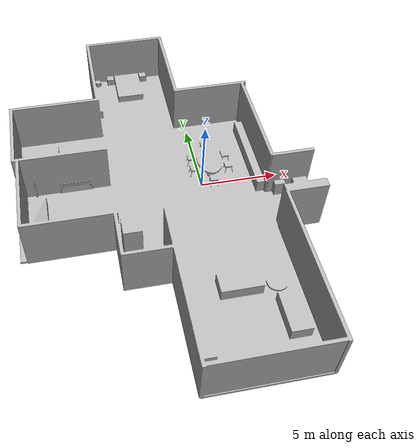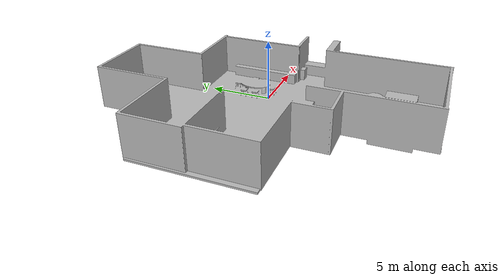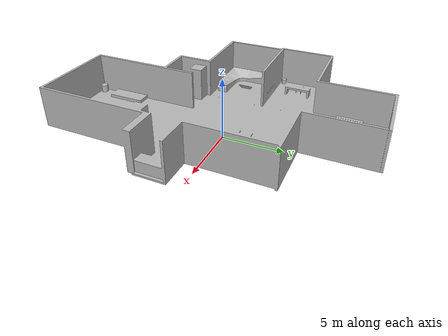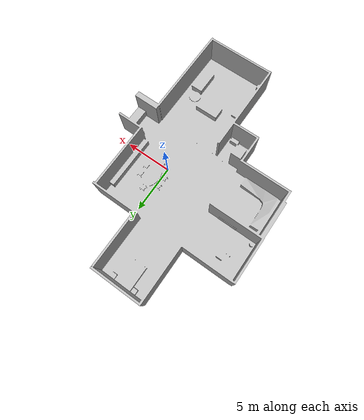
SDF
<?xml version="1.0" ?>

<sdf version="1.6">
  <world name="default">

     <scene>
      <ambient>0.8 0.8 0.8 1.0</ambient>
      <background>0 0 0</background>
      <grid>false</grid>
    </scene>

  <gui>
      <camera name="gui_camera">
        <pose>0.865529 0.125622 1.71795 0 0.364 2.518</pose>
      </camera>
    </gui>

    <include>
      <uri>model://sun</uri>
    </include>

    <include>
      <uri>model://modern_flat</uri>
      <pose>0 0 0 0 0 0</pose>
    </include>

    <light name='user_point_light_0' type='point'>
      <pose>1.05782 2.91259 1 0 -0 0</pose>
      <diffuse>0.5 0.5 0.5 1</diffuse>
      <specular>0.1 0.1 0.1 1</specular>
      <attenuation>
        <range>20</range>
        <constant>0.05</constant>
        <linear>0.02</linear>
        <quadratic>0.001</quadratic>
      </attenuation>
      <cast_shadows>0</cast_shadows>
      <direction>0 0 -1</direction>
    </light>

    <light name='user_point_light_1' type='point'>
      <pose>-2.06735 11.4499 1 0 -0 0</pose>
      <diffuse>0.5 0.5 0.5 1</diffuse>
      <specular>0.1 0.1 0.1 1</specular>
      <attenuation>
        <range>20</range>
        <constant>0.5</constant>
        <linear>0.01</linear>
        <quadratic>0.001</quadratic>
      </attenuation>
      <cast_shadows>0</cast_shadows>
      <direction>0 0 -1</direction>
    </light>
    <light name='user_point_light_2' type='point'>
      <pose>-4.5409 11.4731 1 0 -0 0</pose>
      <diffuse>0.5 0.5 0.5 1</diffuse>
      <specular>0.1 0.1 0.1 1</specular>
      <attenuation>
        <range>20</range>
        <constant>0.5</constant>
        <linear>0.01</linear>
        <quadratic>0.001</quadratic>
      </attenuation>
      <cast_shadows>0</cast_shadows>
      <direction>0 0 -1</direction>
    </light>
    <light name='user_point_light_3' type='point'>
      <pose>-10.2278 0.469161 1 0 -0 0</pose>
      <diffuse>0.5 0.5 0.5 1</diffuse>
      <specular>0.1 0.1 0.1 1</specular>
      <attenuation>
        <range>20</range>
        <constant>0.5</constant>
        <linear>0.01</linear>
        <quadratic>0.001</quadratic>
      </attenuation>
      <cast_shadows>0</cast_shadows>
      <direction>0 0 -1</direction>
    </light>
    <light name='user_point_light_4' type='point'>
      <pose>-9.18754 4.23735 1 0 -0 0</pose>
      <diffuse>0.5 0.5 0.5 1</diffuse>
      <specular>0.1 0.1 0.1 1</specular>
      <attenuation>
        <range>20</range>
        <constant>0.5</constant>
        <linear>0.01</linear>
        <quadratic>0.001</quadratic>
      </attenuation>
      <cast_shadows>0</cast_shadows>
      <direction>0 0 -1</direction>
    </light>
    <light name='user_point_light_5' type='point'>
      <pose>-9.25687 2.61917 1 0 -0 0</pose>
      <diffuse>0.5 0.5 0.5 1</diffuse>
      <specular>0.1 0.1 0.1 1</specular>
      <attenuation>
        <range>20</range>
        <constant>0.5</constant>
        <linear>0.01</linear>
        <quadratic>0.001</quadratic>
      </attenuation>
      <cast_shadows>0</cast_shadows>
      <direction>0 0 -1</direction>
    </light>
    <light name='user_point_light_6' type='point'>
      <pose>-4.07863 -5.28699 1 0 -0 0</pose>
      <diffuse>0.5 0.5 0.5 1</diffuse>
      <specular>0.1 0.1 0.1 1</specular>
      <attenuation>
        <range>20</range>
        <constant>0.5</constant>
        <linear>0.01</linear>
        <quadratic>0.001</quadratic>
      </attenuation>
      <cast_shadows>0</cast_shadows>
      <direction>0 0 -1</direction>
    </light>
    <light name='user_point_light_7' type='point'>
      <pose>0.250894 -11.3276 1 0 -0 0</pose>
      <diffuse>0.5 0.5 0.5 1</diffuse>
      <specular>0.1 0.1 0.1 1</specular>
      <attenuation>
        <range>20</range>
        <constant>0.5</constant>
        <linear>0.01</linear>
        <quadratic>0.001</quadratic>
      </attenuation>
      <cast_shadows>0</cast_shadows>
      <direction>0 0 -1</direction>
    </light>
    <light name='user_point_light_8' type='point'>
      <pose>0.422908 -5.63361 1 0 -0 0</pose>
      <diffuse>0.5 0.5 0.5 1</diffuse>
      <specular>0.1 0.1 0.1 1</specular>
      <attenuation>
        <range>20</range>
        <constant>0.5</constant>
        <linear>0.01</linear>
        <quadratic>0.001</quadratic>
      </attenuation>
      <cast_shadows>0</cast_shadows>
      <direction>0 0 -1</direction>
    </light>
    <light name='user_point_light_9' type='point'>
      <pose>-3.29536 2.95491 1 0 -0 0</pose>
      <diffuse>0.5 0.5 0.5 1</diffuse>
      <specular>0.1 0.1 0.1 1</specular>
      <attenuation>
        <range>20</range>
        <constant>0.5</constant>
        <linear>0.01</linear>
        <quadratic>0.001</quadratic>
      </attenuation>
      <cast_shadows>0</cast_shadows>
      <direction>0 0 -1</direction>
    </light>
    <light name='user_point_light_10' type='point'>
      <pose>-3.435 -2.00259 1 0 -0 0</pose>
      <diffuse>0.5 0.5 0.5 1</diffuse>
      <specular>0.1 0.1 0.1 1</specular>
      <attenuation>
        <range>20</range>
        <constant>0.5</constant>
        <linear>0.01</linear>
        <quadratic>0.001</quadratic>
      </attenuation>
      <cast_shadows>0</cast_shadows>
      <direction>0 0 -1</direction>
    </light>
    <light name='user_point_light_11' type='point'>
      <pose>1.01629 -2.22954 1 0 -0 0</pose>
      <diffuse>0.5 0.5 0.5 1</diffuse>
      <specular>0.1 0.1 0.1 1</specular>
      <attenuation>
        <range>20</range>
        <constant>0.5</constant>
        <linear>0.01</linear>
        <quadratic>0.001</quadratic>
      </attenuation>
      <cast_shadows>0</cast_shadows>
      <direction>0 0 -1</direction>
    </light>

    <light name='user_point_light_12' type='point'>
      <pose>3.51255 -8.95042 1 0 -0 0</pose>
      <diffuse>0.5 0.5 0.5 1</diffuse>
      <specular>0.1 0.1 0.1 1</specular>
      <attenuation>
        <range>20</range>
        <constant>0.05</constant>
        <linear>0.02</linear>
        <quadratic>0.001</quadratic>
      </attenuation>
      <cast_shadows>0</cast_shadows>
      <direction>0 0 -1</direction>
    </light>
    <light name='user_point_light_13' type='point'>
      <pose>-8.58426 -3.52148 1 0 -0 0</pose>
      <diffuse>0.5 0.5 0.5 1</diffuse>
      <specular>0.1 0.1 0.1 1</specular>
      <attenuation>
        <range>20</range>
        <constant>0.05</constant>
        <linear>0.02</linear>
        <quadratic>0.001</quadratic>
      </attenuation>
      <cast_shadows>0</cast_shadows>
      <direction>0 0 -1</direction>
    </light>
    <light name='user_point_light_14' type='point'>
      <pose>-11.3451 3.73195 1 0 -0 0</pose>
      <diffuse>0.5 0.5 0.5 1</diffuse>
      <specular>0.1 0.1 0.1 1</specular>
      <attenuation>
        <range>20</range>
        <constant>0.05</constant>
        <linear>0.02</linear>
        <quadratic>0.001</quadratic>
      </attenuation>
      <cast_shadows>0</cast_shadows>
      <direction>0 0 -1</direction>
    </light>

    <plugin name="gazebo_ros_state" filename="libgazebo_ros_state.so">
      <ros>
        <namespace>/gazebo</namespace>
      </ros>
      <update_rate>5.0</update_rate>
    </plugin>

  </world>
</sdf>

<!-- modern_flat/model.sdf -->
<sdf version='1.6'>
  <model name='modern_flat'>
    <link name='link_1'>
         <visual name='visual'>
        <pose frame=''>0 0 0 0 -0 0</pose>
        <geometry>
          <mesh>
            <uri>model://modern_flat/meshes/modern_flat_low_res.dae</uri>
            <scale>1.0 1.0 1.0</scale>
          </mesh>
        </geometry>
        <cast_shadows>0</cast_shadows>
        <transparency>0</transparency>
      </visual>
      <collision name='collision'>
        <laser_retro>0</laser_retro>
        <max_contacts>10</max_contacts>
        <pose frame=''>0 0 0 0 -0 0</pose>
        <geometry>
          <mesh>
            <uri>model://modern_flat/meshes/modern_flat.stl</uri>
            <scale>1.0 1.0 1.0</scale>
          </mesh>
        </geometry>
     </collision>
    </link>

    <static>1</static>
    <allow_auto_disable>1</allow_auto_disable>
  </model>
</sdf>
